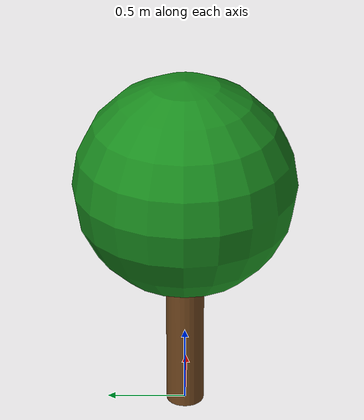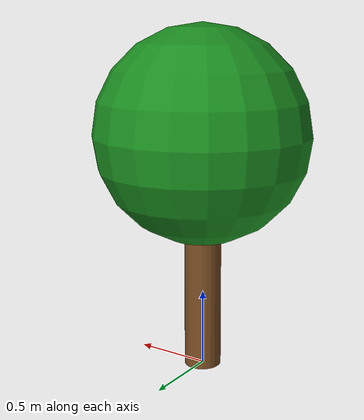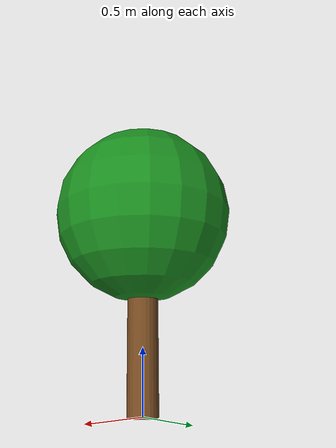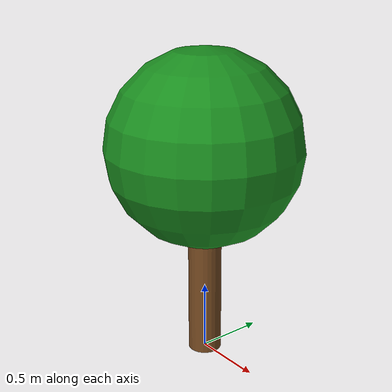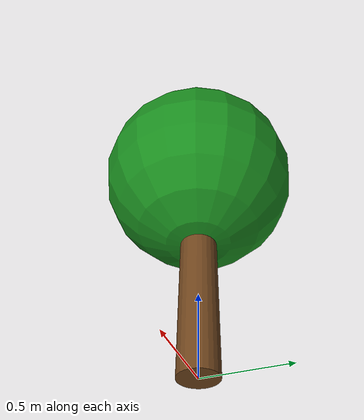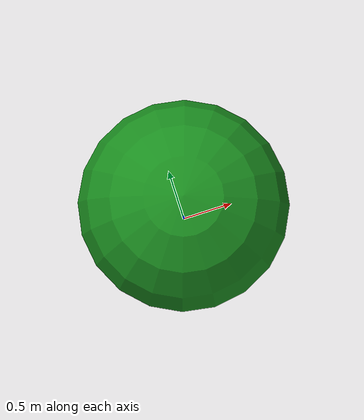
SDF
<?xml version="1.0"?>
<sdf version="1.8">
  <model name="simple_tree">
    <static>true</static>
    <link name="trunk">
      <pose>0 0 0.6 0 0 0</pose>
      <collision name="trunk_col">
        <geometry><cylinder><radius>0.12</radius><length>1.2</length></cylinder></geometry>
      </collision>
      <visual name="trunk_vis">
        <cast_shadows>false</cast_shadows>
        <geometry><cylinder><radius>0.12</radius><length>1.2</length></cylinder></geometry>
        <material>
          <ambient>0.35 0.22 0.10 1</ambient>
          <diffuse>0.45 0.28 0.12 1</diffuse>
        </material>
      </visual>
    </link>
    <link name="canopy">
      <pose>0 0 1.55 0 0 0</pose>
      <collision name="canopy_col">
        <geometry><sphere><radius>0.7</radius></sphere></geometry>
      </collision>
      <visual name="canopy_vis">
        <cast_shadows>false</cast_shadows>
        <geometry><sphere><radius>0.7</radius></sphere></geometry>
        <material>
          <ambient>0.05 0.35 0.08 1</ambient>
          <diffuse>0.1 0.55 0.12 1</diffuse>
        </material>
      </visual>
    </link>
  </model>
</sdf>
